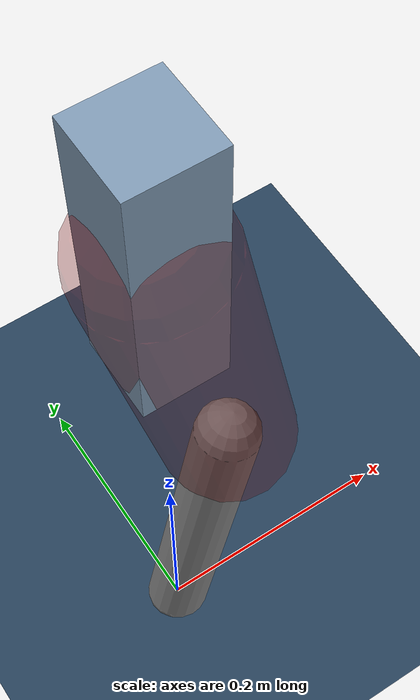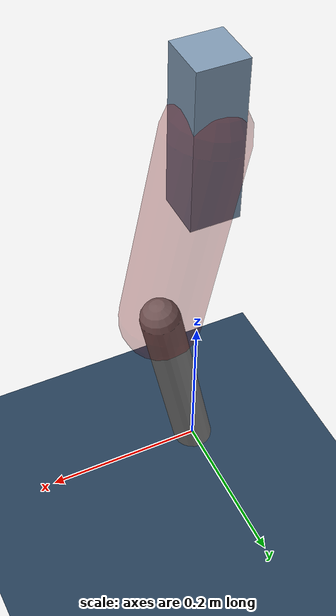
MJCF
<mujoco model="Hopper2D">
	<compiler inertiafromgeom="true" angle="radian" />
	<option timestep="0.001" integrator="implicit" cone="elliptic" solver="Newton" tolerance="1e-10" />

	<default>
		<geom contype="1" conaffinity="1" condim="3" friction="2 0.005 0.0001" solref="0.005 1" />
		<joint limited="true" damping="0.1" />
	</default>

	<asset>
		<texture name="skybox" type="skybox" builtin="gradient" rgb1=".4 .6 .8" rgb2="0 0 0" width="800" height="800" />
		<texture name="grid" type="2d" builtin="checker" rgb1=".1 .2 .3" rgb2=".2 .3 .4" width="300" height="300" mark="edge" markrgb=".2 .3 .4" />
		<material name="ground" texture="grid" texrepeat="1 1" texuniform="true" reflectance="0.1" />
		<material name="leg" rgba="0.5 0.6 0.7 1" />
	</asset>

	<worldbody>

		<geom name="floor" type="plane" size="5 5 0.25" material="ground" />

		<light directional="false" diffuse="0.8 0.8 0.8" specular="0.3 0.3 0.3" pos="0 0 2" dir="0 0 -1" />
		<light mode="targetbodycom" target="base" directional="false" diffuse="0.8 0.8 0.8" specular="0.3 0.3 0.3" pos="0 0 2" dir="0 0 -1" />

		<camera name="fixed" pos="0 -2 1" xyaxes="1 0 0 0 0 1" />
		<camera name="tracking" mode="trackcom" pos="0 -3 1" />

		<body name="root" pos="0 0 0.4969472251649645">
			<joint name="slide_x" type="slide" axis="1 0 0" range="-100 100" />
			<joint name="slide_z" type="slide" axis="0 0 1" range="0 10" />

			<body name="base" pos="0 0 0">
				<geom name="torso" type="box" size="0.03 0.03 0.1" mass="2.063" material="leg" />

				<body name="link1" pos="0 0 0" euler="0 1.3751270508891935 0">
					<joint type="hinge" axis="0 -1 0" pos="0 0 0" name="hinge1" limited="true" range="-3.14 3.14" stiffness="0" damping="0.1" />
					<geom name="thigh" type="capsule" fromto="0 0 0 0.25763524915211583 0 0" size="0.05" rgba="0.5 0 0 0.3" mass="0.8762516477955011" />

					<body name="link2" pos="0.25763524915211583 0 0" euler="0 0.3979600228747553 0">
						<joint type="hinge" axis="0 -1 0" pos="0 0 0" name="hinge2" limited="true" range="-3.14 3.14" stiffness="0" damping="0.1" />
						<geom name="shank" type="capsule" fromto="0 0 0 0.2493119760128486 0 0" size="0.025" mass="0.44194958081027885" />

					</body>
				</body>
			</body>
		</body>
	</worldbody>

	<actuator>
		<motor name="torque1" joint="hinge1" ctrlrange="-27.15153860491063 27.15153860491063" ctrllimited="true" gear="1" />
		<motor name="torque2" joint="hinge2" ctrlrange="-55.74061098133976 55.74061098133976" ctrllimited="true" gear="1" />
	</actuator>
</mujoco>
